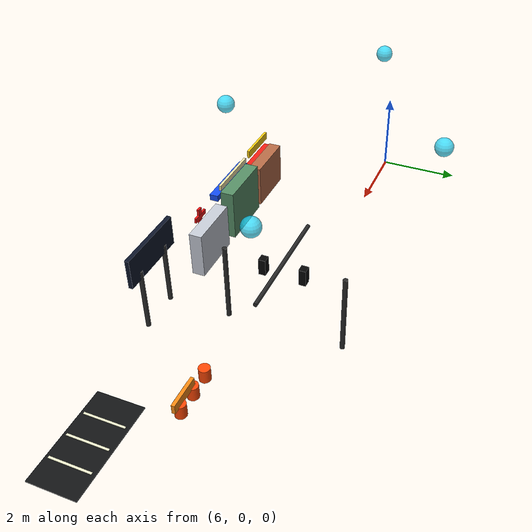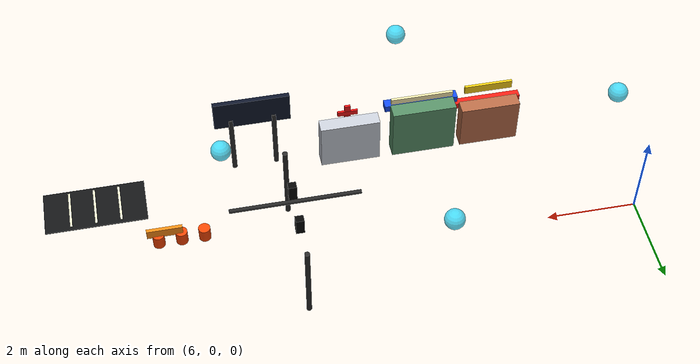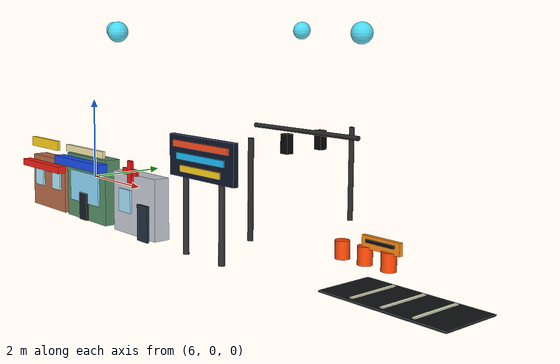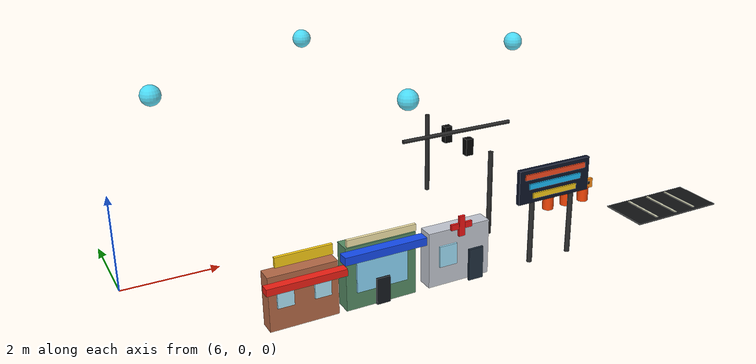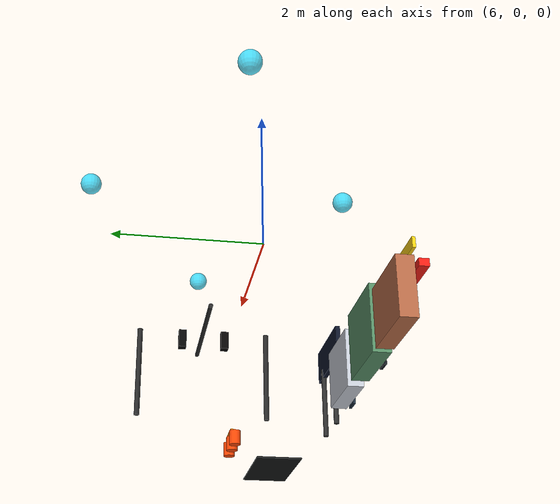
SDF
<?xml version="1.0" ?>
<sdf version="1.6">
  <model name="showcase_city_details">
    <static>true</static>

    <!-- South-facing storefront row: placed toward the default camera for immediate visual impact. -->
    <link name="storefront_cafe">
      <pose>8.7 -2.65 0.55 0 0 0</pose>
      <collision name="collision"><geometry><box><size>1.35 0.32 1.10</size></box></geometry></collision>
      <visual name="wall"><geometry><box><size>1.35 0.32 1.10</size></box></geometry><material><ambient>0.72 0.42 0.28 1</ambient><diffuse>0.72 0.42 0.28 1</diffuse></material></visual>
      <visual name="window_left"><pose>-0.36 -0.18 0.12 0 0 0</pose><geometry><box><size>0.32 0.04 0.42</size></box></geometry><material><ambient>0.70 0.92 1.0 1</ambient><diffuse>0.70 0.92 1.0 1</diffuse></material></visual>
      <visual name="window_right"><pose>0.36 -0.18 0.12 0 0 0</pose><geometry><box><size>0.32 0.04 0.42</size></box></geometry><material><ambient>0.70 0.92 1.0 1</ambient><diffuse>0.70 0.92 1.0 1</diffuse></material></visual>
      <visual name="awning"><pose>0 -0.28 0.38 0 0 0</pose><geometry><box><size>1.55 0.18 0.14</size></box></geometry><material><ambient>0.95 0.12 0.08 1</ambient><diffuse>0.95 0.12 0.08 1</diffuse></material></visual>
      <visual name="sign"><pose>0 -0.22 0.86 0 0 0</pose><geometry><box><size>1.10 0.06 0.20</size></box></geometry><material><ambient>1.0 0.82 0.08 1</ambient><diffuse>1.0 0.82 0.08 1</diffuse></material></visual>
    </link>

    <link name="storefront_market">
      <pose>10.25 -2.65 0.65 0 0 0</pose>
      <collision name="collision"><geometry><box><size>1.45 0.34 1.30</size></box></geometry></collision>
      <visual name="wall"><geometry><box><size>1.45 0.34 1.30</size></box></geometry><material><ambient>0.34 0.56 0.40 1</ambient><diffuse>0.34 0.56 0.40 1</diffuse></material></visual>
      <visual name="glass"><pose>0 -0.20 0.02 0 0 0</pose><geometry><box><size>1.05 0.04 0.62</size></box></geometry><material><ambient>0.56 0.86 1.0 1</ambient><diffuse>0.56 0.86 1.0 1</diffuse></material></visual>
      <visual name="door"><pose>0 -0.23 -0.36 0 0 0</pose><geometry><box><size>0.28 0.05 0.55</size></box></geometry><material><ambient>0.08 0.10 0.12 1</ambient><diffuse>0.08 0.10 0.12 1</diffuse></material></visual>
      <visual name="awning"><pose>0 -0.30 0.52 0 0 0</pose><geometry><box><size>1.68 0.22 0.16</size></box></geometry><material><ambient>0.08 0.30 0.95 1</ambient><diffuse>0.08 0.30 0.95 1</diffuse></material></visual>
      <visual name="roof_trim"><pose>0 -0.18 0.76 0 0 0</pose><geometry><box><size>1.42 0.06 0.14</size></box></geometry><material><ambient>0.98 0.92 0.68 1</ambient><diffuse>0.98 0.92 0.68 1</diffuse></material></visual>
    </link>

    <link name="storefront_clinic">
      <pose>11.95 -2.65 0.58 0 0 0</pose>
      <collision name="collision"><geometry><box><size>1.35 0.32 1.16</size></box></geometry></collision>
      <visual name="wall"><geometry><box><size>1.35 0.32 1.16</size></box></geometry><material><ambient>0.78 0.80 0.84 1</ambient><diffuse>0.78 0.80 0.84 1</diffuse></material></visual>
      <visual name="window"><pose>-0.26 -0.18 0.05 0 0 0</pose><geometry><box><size>0.38 0.04 0.44</size></box></geometry><material><ambient>0.64 0.90 1.0 1</ambient><diffuse>0.64 0.90 1.0 1</diffuse></material></visual>
      <visual name="door"><pose>0.36 -0.20 -0.28 0 0 0</pose><geometry><box><size>0.32 0.05 0.68</size></box></geometry><material><ambient>0.12 0.18 0.24 1</ambient><diffuse>0.12 0.18 0.24 1</diffuse></material></visual>
      <visual name="cross_h"><pose>0 -0.22 0.64 0 0 0</pose><geometry><box><size>0.46 0.05 0.12</size></box></geometry><material><ambient>0.95 0.08 0.08 1</ambient><diffuse>0.95 0.08 0.08 1</diffuse></material></visual>
      <visual name="cross_v"><pose>0 -0.23 0.64 0 0 0</pose><geometry><box><size>0.13 0.055 0.42</size></box></geometry><material><ambient>0.95 0.08 0.08 1</ambient><diffuse>0.95 0.08 0.08 1</diffuse></material></visual>
    </link>

    <!-- A large billboard and road gantry read well from a distance. -->
    <link name="billboard">
      <pose>14.1 -2.85 0 0 0 0</pose>
      <visual name="post_left"><pose>-0.48 0 0.78 0 0 0</pose><geometry><cylinder><radius>0.055</radius><length>1.56</length></cylinder></geometry><material><ambient>0.18 0.18 0.18 1</ambient><diffuse>0.18 0.18 0.18 1</diffuse></material></visual>
      <visual name="post_right"><pose>0.48 0 0.78 0 0 0</pose><geometry><cylinder><radius>0.055</radius><length>1.56</length></cylinder></geometry><material><ambient>0.18 0.18 0.18 1</ambient><diffuse>0.18 0.18 0.18 1</diffuse></material></visual>
      <visual name="board"><pose>0 -0.02 1.72 0 0 0</pose><geometry><box><size>1.70 0.10 0.72</size></box></geometry><material><ambient>0.05 0.08 0.16 1</ambient><diffuse>0.05 0.08 0.16 1</diffuse></material></visual>
      <visual name="stripe_top"><pose>0 -0.08 1.93 0 0 0</pose><geometry><box><size>1.45 0.04 0.11</size></box></geometry><material><ambient>1.0 0.30 0.12 1</ambient><diffuse>1.0 0.30 0.12 1</diffuse></material></visual>
      <visual name="stripe_mid"><pose>0 -0.08 1.72 0 0 0</pose><geometry><box><size>1.25 0.04 0.11</size></box></geometry><material><ambient>0.10 0.75 1.0 1</ambient><diffuse>0.10 0.75 1.0 1</diffuse></material></visual>
      <visual name="stripe_low"><pose>0 -0.08 1.51 0 0 0</pose><geometry><box><size>1.05 0.04 0.11</size></box></geometry><material><ambient>1.0 0.82 0.10 1</ambient><diffuse>1.0 0.82 0.10 1</diffuse></material></visual>
    </link>

    <link name="traffic_gantry">
      <pose>13.6 0 0 0 0 0</pose>
      <visual name="left_post"><pose>0 -1.35 0.95 0 0 0</pose><geometry><cylinder><radius>0.055</radius><length>1.9</length></cylinder></geometry><material><ambient>0.16 0.16 0.16 1</ambient><diffuse>0.16 0.16 0.16 1</diffuse></material></visual>
      <visual name="right_post"><pose>0 1.35 0.95 0 0 0</pose><geometry><cylinder><radius>0.055</radius><length>1.9</length></cylinder></geometry><material><ambient>0.16 0.16 0.16 1</ambient><diffuse>0.16 0.16 0.16 1</diffuse></material></visual>
      <visual name="beam"><pose>0 0 1.92 0 1.5708 0</pose><geometry><cylinder><radius>0.045</radius><length>2.75</length></cylinder></geometry><material><ambient>0.16 0.16 0.16 1</ambient><diffuse>0.16 0.16 0.16 1</diffuse></material></visual>
      <visual name="left_signal"><pose>0 -0.45 1.72 0 0 0</pose><geometry><box><size>0.18 0.16 0.38</size></box></geometry><material><ambient>0.02 0.02 0.02 1</ambient><diffuse>0.02 0.02 0.02 1</diffuse></material></visual>
      <visual name="right_signal"><pose>0 0.45 1.72 0 0 0</pose><geometry><box><size>0.18 0.16 0.38</size></box></geometry><material><ambient>0.02 0.02 0.02 1</ambient><diffuse>0.02 0.02 0.02 1</diffuse></material></visual>
      <visual name="green_light"><pose>0 -0.45 1.62 0 0 0</pose><geometry><sphere><radius>0.055</radius></sphere></geometry><material><ambient>0.0 1.0 0.22 1</ambient><diffuse>0.0 1.0 0.22 1</diffuse></material></visual>
      <visual name="red_light"><pose>0 0.45 1.82 0 0 0</pose><geometry><sphere><radius>0.055</radius></sphere></geometry><material><ambient>1.0 0.05 0.03 1</ambient><diffuse>1.0 0.05 0.03 1</diffuse></material></visual>
    </link>

    <!-- Parking and construction details. -->
    <link name="parking_lot_markings">
      <pose>17.8 -2.2 0.065 0 0 0</pose>
      <visual name="base"><geometry><box><size>2.25 1.10 0.025</size></box></geometry><material><ambient>0.07 0.075 0.08 1</ambient><diffuse>0.07 0.075 0.08 1</diffuse></material></visual>
      <visual name="line_1"><pose>-0.55 0 0.025 0 0 0</pose><geometry><box><size>0.05 0.95 0.018</size></box></geometry><material><ambient>0.95 0.95 0.82 1</ambient><diffuse>0.95 0.95 0.82 1</diffuse></material></visual>
      <visual name="line_2"><pose>0.00 0 0.025 0 0 0</pose><geometry><box><size>0.05 0.95 0.018</size></box></geometry><material><ambient>0.95 0.95 0.82 1</ambient><diffuse>0.95 0.95 0.82 1</diffuse></material></visual>
      <visual name="line_3"><pose>0.55 0 0.025 0 0 0</pose><geometry><box><size>0.05 0.95 0.018</size></box></geometry><material><ambient>0.95 0.95 0.82 1</ambient><diffuse>0.95 0.95 0.82 1</diffuse></material></visual>
    </link>

    <link name="construction_zone">
      <pose>16.0 -0.95 0 0 0 0</pose>
      <visual name="board"><pose>0.35 0 0.40 0 0 0</pose><geometry><box><size>0.78 0.08 0.22</size></box></geometry><material><ambient>1.0 0.55 0.08 1</ambient><diffuse>1.0 0.55 0.08 1</diffuse></material></visual>
      <visual name="cone_1"><pose>-0.50 0 0.16 0 0 0</pose><geometry><cylinder><radius>0.13</radius><length>0.32</length></cylinder></geometry><material><ambient>1.0 0.28 0.02 1</ambient><diffuse>1.0 0.28 0.02 1</diffuse></material></visual>
      <visual name="cone_2"><pose>0.00 0 0.16 0 0 0</pose><geometry><cylinder><radius>0.13</radius><length>0.32</length></cylinder></geometry><material><ambient>1.0 0.28 0.02 1</ambient><diffuse>1.0 0.28 0.02 1</diffuse></material></visual>
      <visual name="cone_3"><pose>0.50 0 0.16 0 0 0</pose><geometry><cylinder><radius>0.13</radius><length>0.32</length></cylinder></geometry><material><ambient>1.0 0.28 0.02 1</ambient><diffuse>1.0 0.28 0.02 1</diffuse></material></visual>
      <visual name="stripe"><pose>0.35 -0.05 0.43 0 0 0</pose><geometry><box><size>0.58 0.04 0.06</size></box></geometry><material><ambient>0.05 0.05 0.05 1</ambient><diffuse>0.05 0.05 0.05 1</diffuse></material></visual>
    </link>

    <!-- Low-altitude aircraft route markers: visible but small enough not to dominate. -->
    <link name="flight_marker_city">
      <pose>15.0 0.0 3.8 0 0 0</pose>
      <visual name="marker"><geometry><sphere><radius>0.20</radius></sphere></geometry><material><ambient>0.10 0.85 1.0 0.75</ambient><diffuse>0.10 0.85 1.0 0.75</diffuse></material></visual>
    </link>

    <link name="flight_marker_mountain">
      <pose>7.0 0.0 3.8 0 0 0</pose>
      <visual name="marker"><geometry><sphere><radius>0.20</radius></sphere></geometry><material><ambient>0.10 0.85 1.0 0.75</ambient><diffuse>0.10 0.85 1.0 0.75</diffuse></material></visual>
    </link>

    <link name="flight_marker_south">
      <pose>11.0 -2.5 3.8 0 0 0</pose>
      <visual name="marker"><geometry><sphere><radius>0.20</radius></sphere></geometry><material><ambient>0.10 0.85 1.0 0.75</ambient><diffuse>0.10 0.85 1.0 0.75</diffuse></material></visual>
    </link>

    <link name="flight_marker_north">
      <pose>11.0 2.5 3.8 0 0 0</pose>
      <visual name="marker"><geometry><sphere><radius>0.20</radius></sphere></geometry><material><ambient>0.10 0.85 1.0 0.75</ambient><diffuse>0.10 0.85 1.0 0.75</diffuse></material></visual>
    </link>
  </model>
</sdf>
